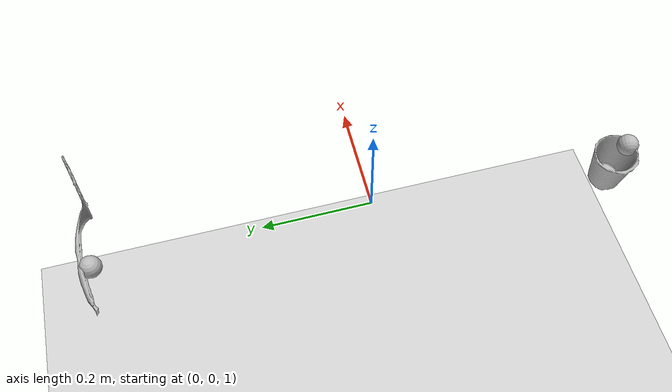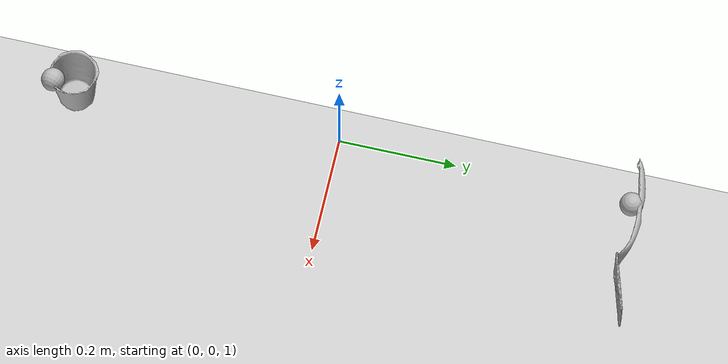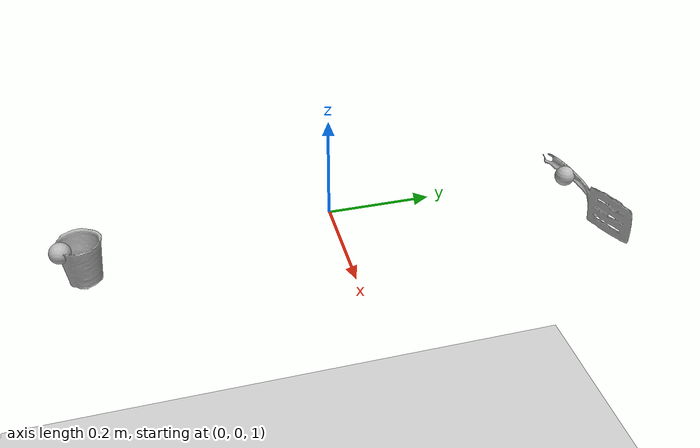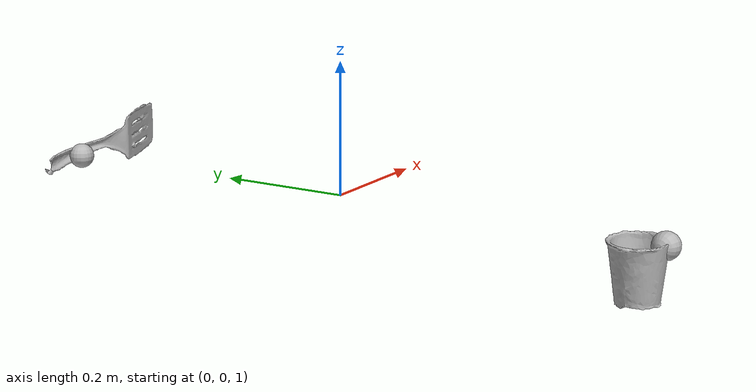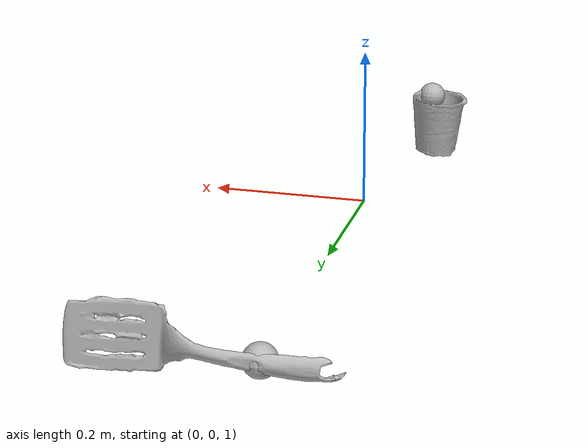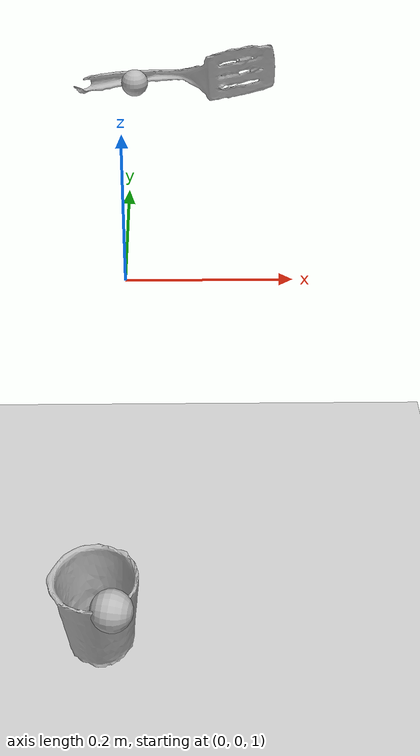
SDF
<sdf version="1.6">
 <world name="b_coffee_cup_b_spatula_v">
  <include><uri>model://sun</uri></include>
  <include><uri>model://ground_plane</uri></include>
  <include>
   <uri>model://b_spatula</uri>
   <pose>0.094321 0.507657 1.009274 -1.637236 0.074980 -3.141592</pose>
  </include>
  <plugin name="grains_factory" filename="libGrainsFactoryPlugin.so">
   <pose>-0.016492 -0.468631 0.965206 0 0 0</pose>
   <mass>0.001</mass>
   <radius>0.015</radius>
   <quantity>100</quantity>
   <friction>0.4</friction>
   <friction2>0.4</friction2>
   <velocity_decay>0.3</velocity_decay>
  </plugin>
  <include>
   <uri>model://b_coffee_cup</uri>
   <pose>-0.016492 -0.468631 0.965206 2.603069 -1.513021 -2.66073</pose>
  </include>
  <include>
   <uri>model://gripper</uri>
   <name>left_ee</name>
   <pose>0 0.5 1 0 0 0</pose>
   <plugin name="l_force_controller" filename="libvelocity_controller_plugin.so">
    <linkName>link</linkName>
    <topicName>set_l_ee_twist</topicName>
    <gains>
     <linear><P>100.0</P><I>0.0</I><D>25.0</D></linear>
     <angular><P>100.0</P><I>0.0</I><D>25.0</D></angular>
    </gains>
   </plugin>
   <plugin name="l_grip" filename="libGripPlugin.so">
    <parentLinkName>link</parentLinkName>
    <childLinkName>b_thin_spatula::link</childLinkName>
    <relativePose>0.094321 0.007657 0.009274 -1.63724 0.07498 -3.14159</relativePose>
   </plugin>
   <plugin name="l_tf_broadcaster" filename="libtf_broadcaster_plugin.so">
    <linkName>link</linkName>
    <frameName>l_gripper_tool_frame</frameName>
   </plugin>
  </include>
  <include>
   <uri>model://gripper</uri>
   <name>right_ee</name>
   <pose>0 -0.5 1 1.547368 1.402341 1.343703</pose>
   <plugin name="r_force_controller" filename="libvelocity_controller_plugin.so">
    <linkName>link</linkName>
    <topicName>set_r_ee_twist</topicName>
    <gains>
     <linear><P>100.0</P><I>0.0</I><D>25.0</D></linear>
     <angular><P>100.0</P><I>0.0</I><D>25.0</D></angular>
    </gains>
   </plugin>
   <plugin name="r_grip" filename="libGripPlugin.so">
    <parentLinkName>link</parentLinkName>
    <childLinkName>b_coffee_cup::link</childLinkName>
    <relativePose>0.0284501 0.0346428 -0.0213798 2.93848 0.00496188 2.88401</relativePose>
   </plugin>
   <plugin name="r_tf_broadcaster" filename="libtf_broadcaster_plugin.so">
    <linkName>link</linkName>
    <frameName>r_gripper_tool_frame</frameName>
   </plugin>
  </include>
  <plugin name="feature_visualization_plugin" filename="libgiskard_visualization_plugin.so"/>
 </world>
</sdf>

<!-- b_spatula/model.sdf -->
<sdf version='1.6'>
	<model name='b_spatula'>
		<static>false</static>
		<pose>0 0 0 0 0 0</pose>

		<link name='link'>
			<inertial>
			<mass>0.11</mass>
			<pose>0.00088072 -6.5132e-05 0.00086388 0 0 0</pose>
				<inertia>
					<ixx>8.1404e-07</ixx>
					<ixy>0</ixy>
					<ixz>0</ixz>
					<iyy>1.1521e-06</iyy>
					<iyz>0</iyz>
					<izz>5.3661e-07</izz>
				</inertia>
			</inertial>

			<sensor name="tool_contact_sensor" type="contact">
				<always_on>true</always_on>
				<update_rate>30.0</update_rate>
				<contact>
					<collision>collision</collision>
				</contact>
				<plugin name="tool_bumper" filename="libgazebo_ros_bumper.so">
					<bumperTopicName>tool_contact_sensor_state</bumperTopicName>
					<frameName>world</frameName>
				</plugin>
			</sensor>

			<collision name='collision'>
				<geometry>
					<mesh>
						<uri>model://b_spatula/b_spatula.dae</uri>
					</mesh>
				</geometry>
				<surface>
					<friction>
						<ode>
							<mu>0.2</mu>
							<mu2>0.2</mu2>
						</ode>
					</friction>
				</surface>
			</collision>
			<visual name='visual'>
				<geometry>
					<mesh>
						<uri>model://b_spatula/b_spatula.dae</uri>
					</mesh>
				</geometry>
			</visual>
		</link>
	</model>
</sdf>

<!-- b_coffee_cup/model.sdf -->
<sdf version='1.6'>
	<model name='b_coffee_cup'>
		<static>false</static>
		<pose>0 0 0 0 0 0</pose>

		<link name='link'>
			<inertial>
			<mass>0.1</mass>
			<pose>-2.03e-05 0.001225 -0.00019831 0 0 0</pose>
				<inertia>
					<ixx>7.571e-07</ixx>
					<ixy>0</ixy>
					<ixz>0</ixz>
					<iyy>6.1374e-07</iyy>
					<iyz>0</iyz>
					<izz>6.0131e-07</izz>
				</inertia>
			</inertial>
			<collision name='collision'>
				<geometry>
					<mesh>
						<uri>model://b_coffee_cup/b_coffee_cup.dae</uri>
					</mesh>
				</geometry>
				<surface>
					<friction>
						<ode>
							<mu>0.2</mu>
							<mu2>0.2</mu2>
						</ode>
					</friction>
				</surface>
			</collision>
			<visual name='visual'>
				<geometry>
					<mesh>
						<uri>model://b_coffee_cup/b_coffee_cup.dae</uri>
					</mesh>
				</geometry>
			</visual>
		</link>
	</model>
</sdf>

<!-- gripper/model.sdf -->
<sdf version='1.6'>
    <model name='gripper'>
        <static>false</static>
        <allow_auto_disable>false</allow_auto_disable>

        <pose>0 0 0 0 0 0</pose>

        <link name='link'>
            <pose>0 0 0 0 0 0</pose>

            <gravity>false</gravity>

            <visual name='visual'>
                <geometry>
                    <sphere>
                        <radius>0.02</radius>
                    </sphere>
                </geometry>
            </visual>

        </link>
    </model>
</sdf>
